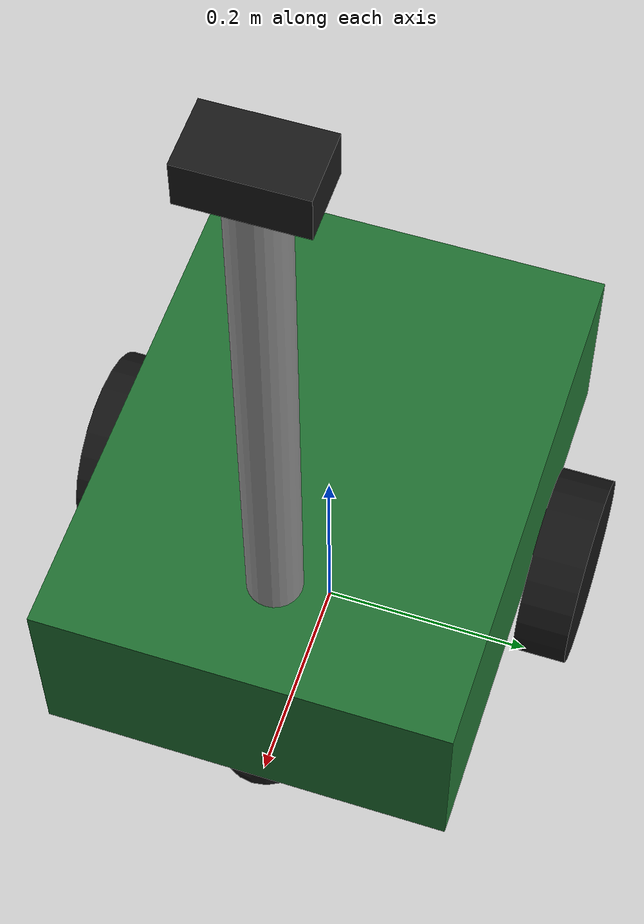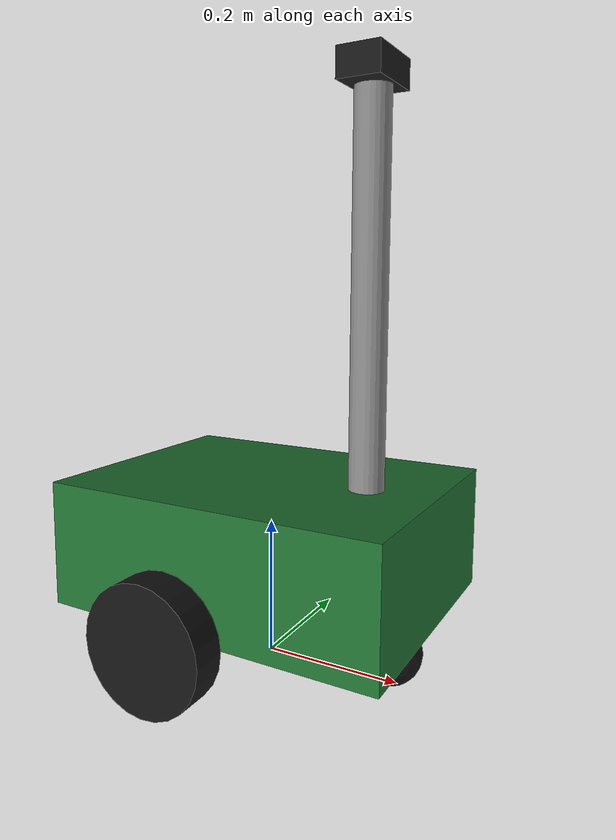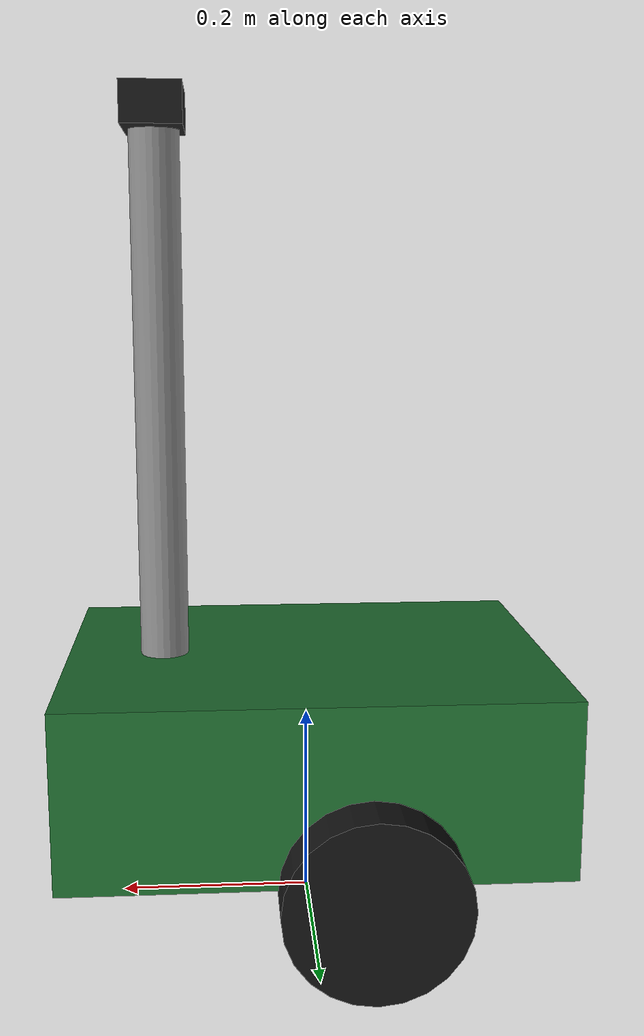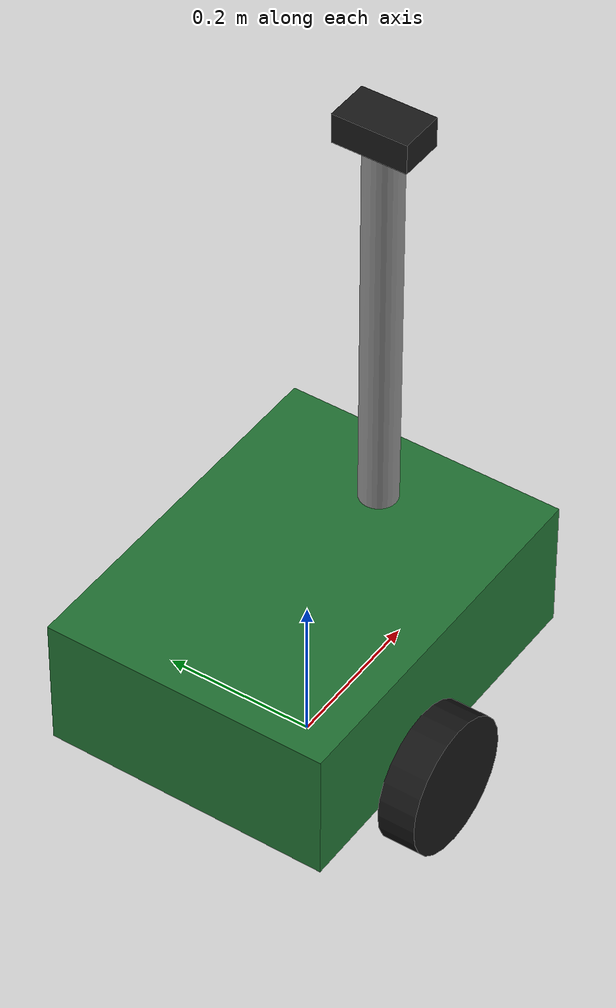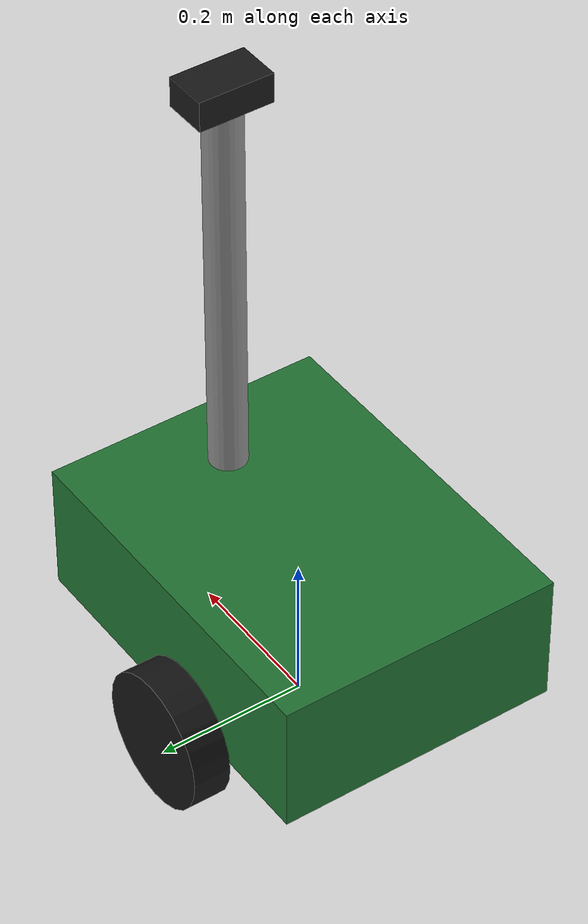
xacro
<?xml version="1.0"?>
<robot name="greenhouse_bot" xmlns:xacro="http://ros.org/wiki/xacro">

  <xacro:include filename="$(find greenhouse_description)/urdf/materials.xacro"/>
  <xacro:include filename="$(find greenhouse_description)/urdf/greenhouse_bot.gazebo.xacro"/>

  <!-- ===================== Parameters ===================== -->
  <xacro:property name="chassis_length" value="0.50"/>
  <xacro:property name="chassis_width"  value="0.38"/>
  <xacro:property name="chassis_height" value="0.18"/>
  <xacro:property name="chassis_mass"   value="18.0"/>

  <xacro:property name="wheel_radius"   value="0.09"/>
  <xacro:property name="wheel_width"    value="0.05"/>
  <xacro:property name="wheel_mass"     value="1.2"/>
  <xacro:property name="wheel_separation" value="0.44"/>
  <xacro:property name="wheel_x_offset" value="-0.05"/>

  <xacro:property name="caster_radius"  value="0.045"/>
  <xacro:property name="caster_mass"    value="0.3"/>

  <xacro:property name="mast_height"    value="0.55"/>
  <xacro:property name="mast_radius"    value="0.025"/>

  <!-- ===================== base_link / footprint ===================== -->
  <link name="base_footprint"/>

  <joint name="base_footprint_joint" type="fixed">
    <parent link="base_footprint"/>
    <child link="base_link"/>
    <origin xyz="0 0 ${wheel_radius}" rpy="0 0 0"/>
  </joint>

  <link name="base_link">
    <visual>
      <origin xyz="0 0 ${chassis_height/2}" rpy="0 0 0"/>
      <geometry>
        <box size="${chassis_length} ${chassis_width} ${chassis_height}"/>
      </geometry>
      <material name="chassis_green"/>
    </visual>
    <collision>
      <origin xyz="0 0 ${chassis_height/2}" rpy="0 0 0"/>
      <geometry>
        <box size="${chassis_length} ${chassis_width} ${chassis_height}"/>
      </geometry>
    </collision>
    <inertial>
      <origin xyz="0 0 ${chassis_height/2}" rpy="0 0 0"/>
      <mass value="${chassis_mass}"/>
      <inertia
        ixx="${chassis_mass/12.0*(chassis_width*chassis_width+chassis_height*chassis_height)}" ixy="0" ixz="0"
        iyy="${chassis_mass/12.0*(chassis_length*chassis_length+chassis_height*chassis_height)}" iyz="0"
        izz="${chassis_mass/12.0*(chassis_length*chassis_length+chassis_width*chassis_width)}"/>
    </inertial>
  </link>

  <!-- ===================== Drive wheels ===================== -->
  <xacro:macro name="drive_wheel" params="prefix y_reflect">
    <link name="${prefix}_wheel_link">
      <visual>
        <origin xyz="0 0 0" rpy="${pi/2} 0 0"/>
        <geometry>
          <cylinder radius="${wheel_radius}" length="${wheel_width}"/>
        </geometry>
        <material name="wheel_black"/>
      </visual>
      <collision>
        <origin xyz="0 0 0" rpy="${pi/2} 0 0"/>
        <geometry>
          <cylinder radius="${wheel_radius}" length="${wheel_width}"/>
        </geometry>
      </collision>
      <inertial>
        <mass value="${wheel_mass}"/>
        <inertia
          ixx="${wheel_mass/12.0*(3*wheel_radius*wheel_radius+wheel_width*wheel_width)}" ixy="0" ixz="0"
          iyy="${wheel_mass/12.0*(3*wheel_radius*wheel_radius+wheel_width*wheel_width)}" iyz="0"
          izz="${wheel_mass/2.0*wheel_radius*wheel_radius}"/>
      </inertial>
    </link>

    <joint name="${prefix}_wheel_joint" type="continuous">
      <parent link="base_link"/>
      <child link="${prefix}_wheel_link"/>
      <origin xyz="${wheel_x_offset} ${y_reflect*wheel_separation/2} 0" rpy="0 0 0"/>
      <axis xyz="0 1 0"/>
    </joint>
  </xacro:macro>

  <xacro:drive_wheel prefix="left"  y_reflect="1"/>
  <xacro:drive_wheel prefix="right" y_reflect="-1"/>

  <!-- ===================== Caster (passive, front) ===================== -->
  <link name="caster_wheel_link">
    <visual>
      <geometry><sphere radius="${caster_radius}"/></geometry>
      <material name="wheel_black"/>
    </visual>
    <collision>
      <geometry><sphere radius="${caster_radius}"/></geometry>
    </collision>
    <inertial>
      <mass value="${caster_mass}"/>
      <inertia ixx="0.001" ixy="0" ixz="0" iyy="0.001" iyz="0" izz="0.001"/>
    </inertial>
  </link>

  <joint name="caster_wheel_joint" type="fixed">
    <parent link="base_link"/>
    <child link="caster_wheel_link"/>
    <origin xyz="${chassis_length/2 - 0.06} 0 ${caster_radius - wheel_radius}" rpy="0 0 0"/>
  </joint>

  <!-- ===================== Camera mast + pan joint ===================== -->
  <!-- No 2D lidar: nav obstacle-avoidance and mapping both run off the
       RGB-D camera below (rgbd_camera -> RTAB-Map), same sensing approach
       as the forklift project's camera-only VSLAM stack. -->
  <link name="mast_link">
    <visual>
      <origin xyz="0 0 ${mast_height/2}" rpy="0 0 0"/>
      <geometry><cylinder radius="${mast_radius}" length="${mast_height}"/></geometry>
      <material name="mast_grey"/>
    </visual>
    <collision>
      <origin xyz="0 0 ${mast_height/2}" rpy="0 0 0"/>
      <geometry><cylinder radius="${mast_radius}" length="${mast_height}"/></geometry>
    </collision>
    <inertial>
      <mass value="0.6"/>
      <inertia ixx="0.002" ixy="0" ixz="0" iyy="0.002" iyz="0" izz="0.0005"/>
    </inertial>
  </link>

  <joint name="mast_joint" type="fixed">
    <parent link="base_link"/>
    <child link="mast_link"/>
    <origin xyz="${chassis_length/2 - 0.1} 0 ${chassis_height}" rpy="0 0 0"/>
  </joint>

  <link name="camera_pan_link">
    <visual>
      <geometry><box size="0.06 0.10 0.04"/></geometry>
      <material name="camera_dark"/>
    </visual>
    <collision>
      <geometry><box size="0.06 0.10 0.04"/></geometry>
    </collision>
    <inertial>
      <mass value="0.15"/>
      <inertia ixx="0.0002" ixy="0" ixz="0" iyy="0.0002" iyz="0" izz="0.0002"/>
    </inertial>
  </link>

  <!-- Revolute pan joint so the vision node can sweep to search for markers -->
  <joint name="camera_pan_joint" type="revolute">
    <parent link="mast_link"/>
    <child link="camera_pan_link"/>
    <origin xyz="0 0 ${mast_height}" rpy="0 0 0"/>
    <axis xyz="0 0 1"/>
    <limit lower="-1.57" upper="1.57" effort="2.0" velocity="2.0"/>
  </joint>

  <link name="camera_optical_link"/>

  <joint name="camera_optical_joint" type="fixed">
    <parent link="camera_pan_link"/>
    <child link="camera_optical_link"/>
    <origin xyz="0 0 0" rpy="${-pi/2} 0 ${-pi/2}"/>
  </joint>

</robot>

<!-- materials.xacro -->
<robot xmlns:xacro="http://ros.org/wiki/xacro">

  <material name="chassis_green">
    <color rgba="0.13 0.45 0.20 1.0"/>
  </material>

  <material name="wheel_black">
    <color rgba="0.08 0.08 0.08 1.0"/>
  </material>

  <material name="mast_grey">
    <color rgba="0.55 0.55 0.55 1.0"/>
  </material>

  <material name="camera_dark">
    <color rgba="0.1 0.1 0.1 1.0"/>
  </material>

</robot>
